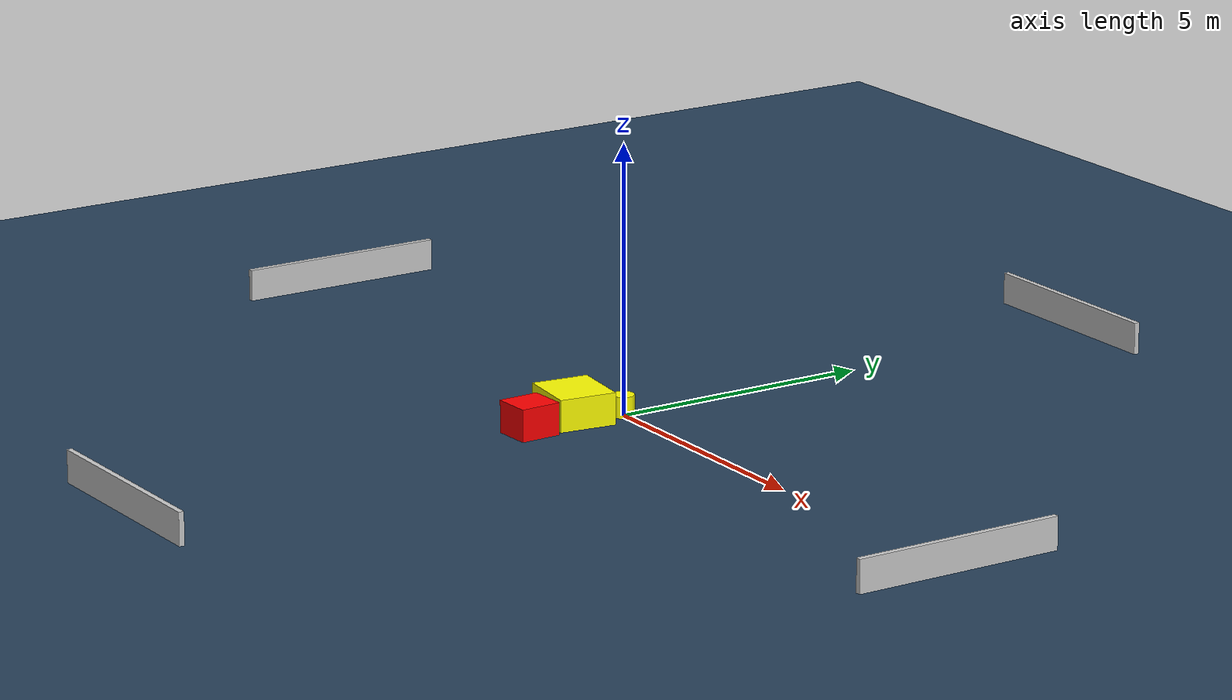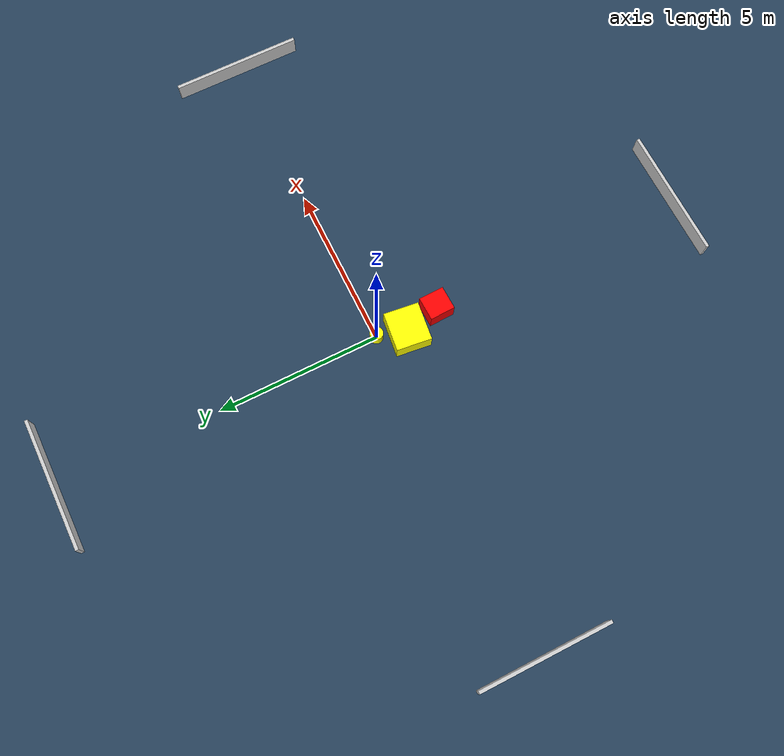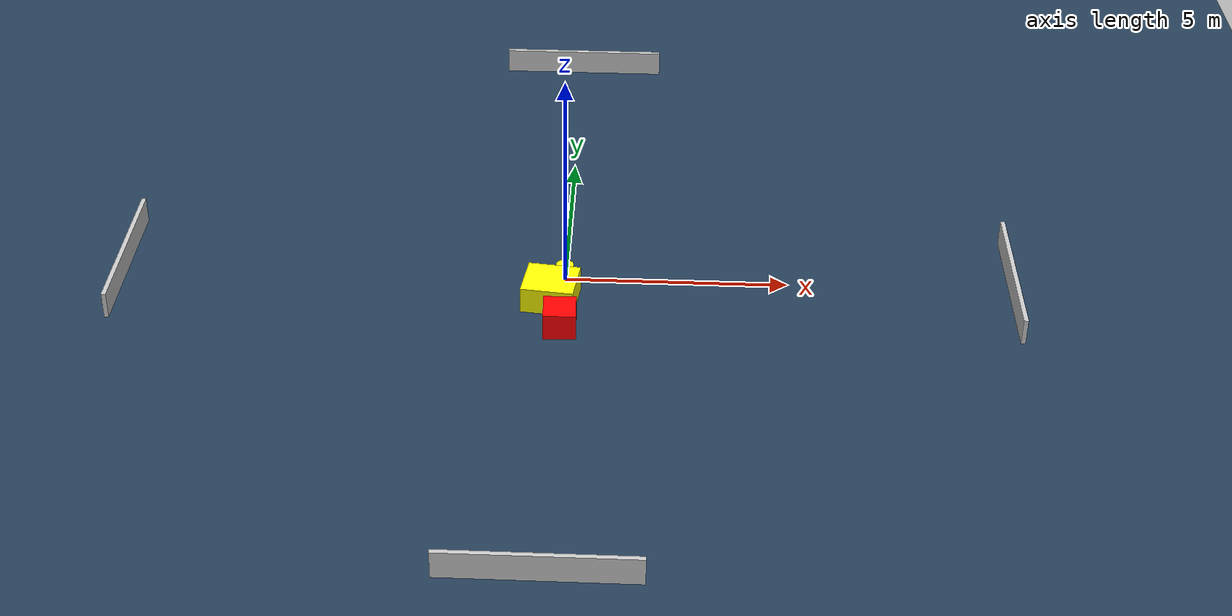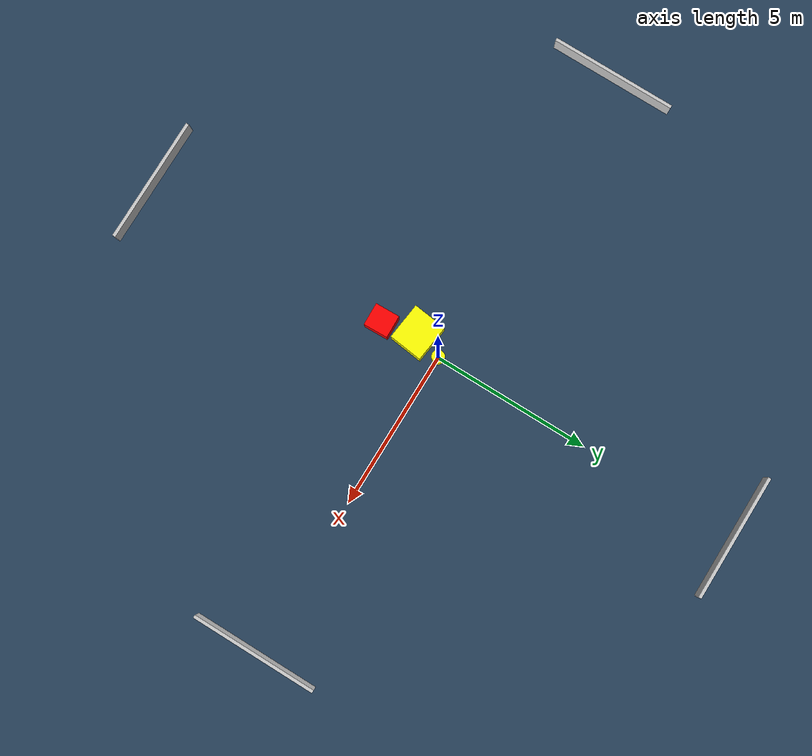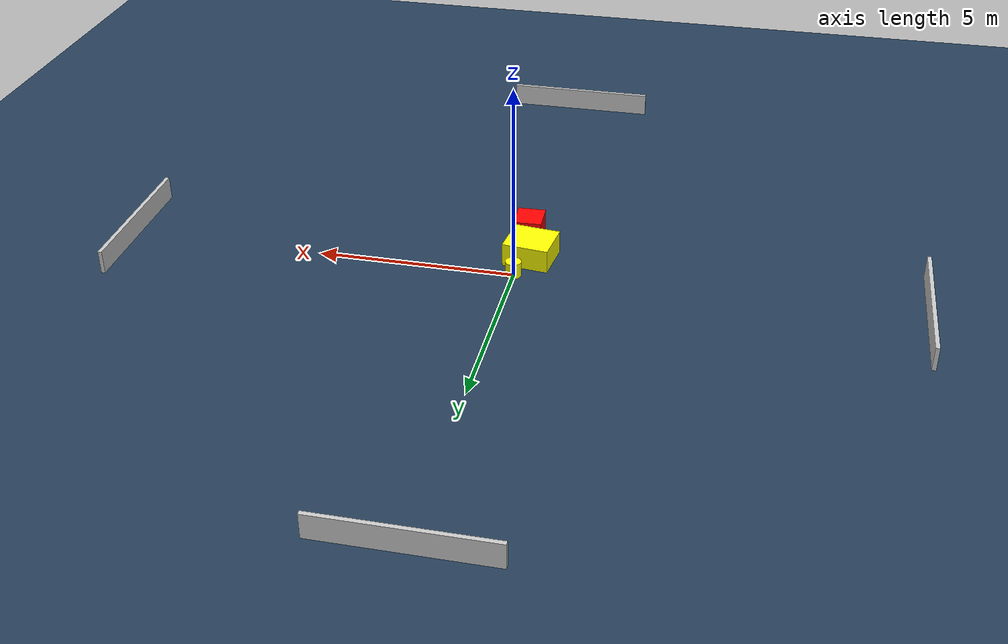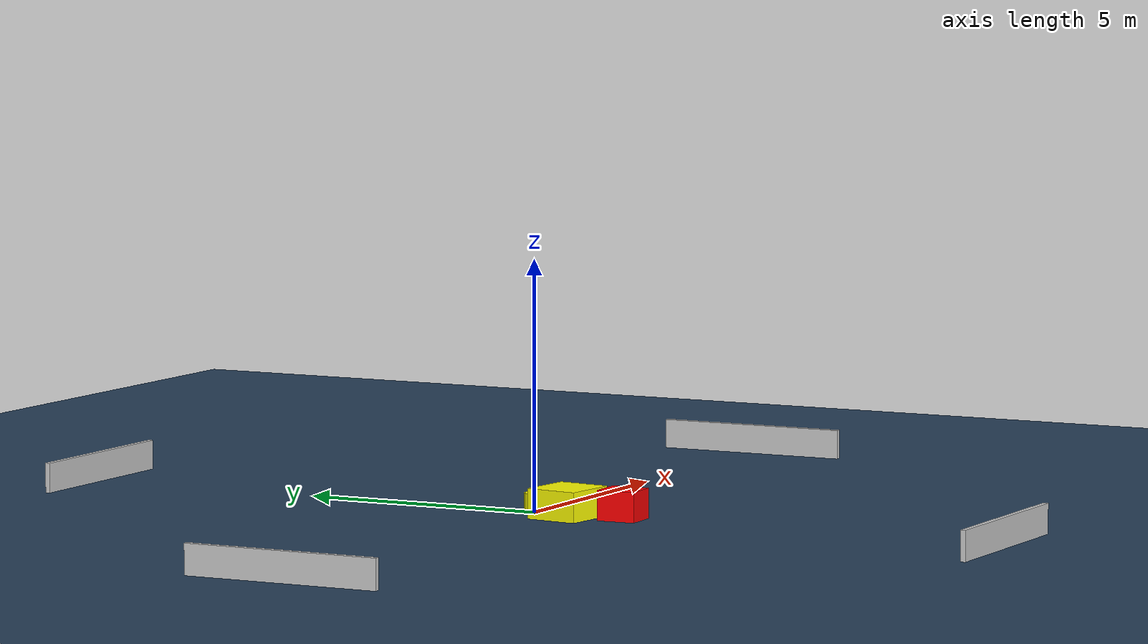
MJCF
<?xml version="1.0" ?>
<mujoco model="generated_environment">
  <option timestep="0.01" integrator="RK4" cone="elliptic"/>
  <default>
    <geom density="1"/>
  </default>
  <asset>
    <texture builtin="gradient" height="3072" name="skybox" rgb1="0.3 0.5 0.7" rgb2="0 0 0" type="skybox" width="512"/>
    <texture builtin="checker" height="300" name="groundplane" rgb1="0.2 0.3 0.4" rgb2="0.1 0.2 0.3" type="2d" width="300"/>
    <material name="groundplane" reflectance="0.2" texrepeat="5 5" texture="groundplane"/>
  </asset>
  <worldbody>
    <light dir="0 0 -1" directional="true" pos="0 0 1.5"/>
    <geom condim="3" friction="0.5 0.005 0.001" material="groundplane" name="floor" pos="0 0 0" size="0 0 0.05" type="plane"/>
    <body name="walls">
      <geom name="wall_1" condim="4" pos="-10.0 0.0 0.3" rgba="0.800000011920929 0.800000011920929 0.800000011920929 1.0" size="0.05 2.0 0.3" type="box"/>
      <geom name="wall_2" condim="4" pos="10.0 0.0 0.3" rgba="0.800000011920929 0.800000011920929 0.800000011920929 1.0" size="0.05 2.0 0.3" type="box"/>
      <geom name="wall_3" condim="4" pos="0.0 -10.0 0.3" rgba="0.800000011920929 0.800000011920929 0.800000011920929 1.0" size="2.0 0.05 0.3" type="box"/>
      <geom name="wall_4" condim="4" pos="0.0 10.0 0.3" rgba="0.800000011920929 0.800000011920929 0.800000011920929 1.0" size="2.0 0.05 0.3" type="box"/>
    </body>
    <body name="robot">
      <joint name="joint_x" type="slide" pos="0 0 0" axis="1 0 0"/>
      <joint name="joint_y" type="slide" pos="0 0 0" axis="0 1 0"/>
      <geom name="robot" type="cylinder" pos="0.0 0.0 0.2" size="0.2 0.2 0.0" mass="5.0" friction="1.0 0.005 0.0001" condim="4" rgba="1.0 1.0 0.0 1.0"/>
    </body>
    <body name="obstacle_1_movable">
      <geom name="obstacle_1_movable" condim="4" pos="-0.27472868264303196 -0.8712338480726749 0.3" euler="0 0 263.0814235813076" friction="0.0 0.005 0.001" rgba="1.0 1.0 0.0 1.0" size="0.5375487697463377 0.5866567313616103 0.3" type="box" mass="0.1"/>
      <joint type="free"/>
    </body>
    <body name="obstacle_2_static">
      <geom name="obstacle_2_static" condim="4" pos="-0.018508249061039383 -1.9587813940514613 0.3" euler="0 0 181.81962712216912" friction="0.0 0.005 0.001" rgba="1.0 0.0 0.0 1.0" size="0.35808702033885825 0.38678049307610984 0.3" type="box"/>
    </body>
  </worldbody>
  <actuator>
    <motor name="actuator_x" joint="joint_x" gear="1" ctrlrange="-1 1"/>
    <motor name="actuator_y" joint="joint_y" gear="1" ctrlrange="-1 1"/>
  </actuator>
</mujoco>
